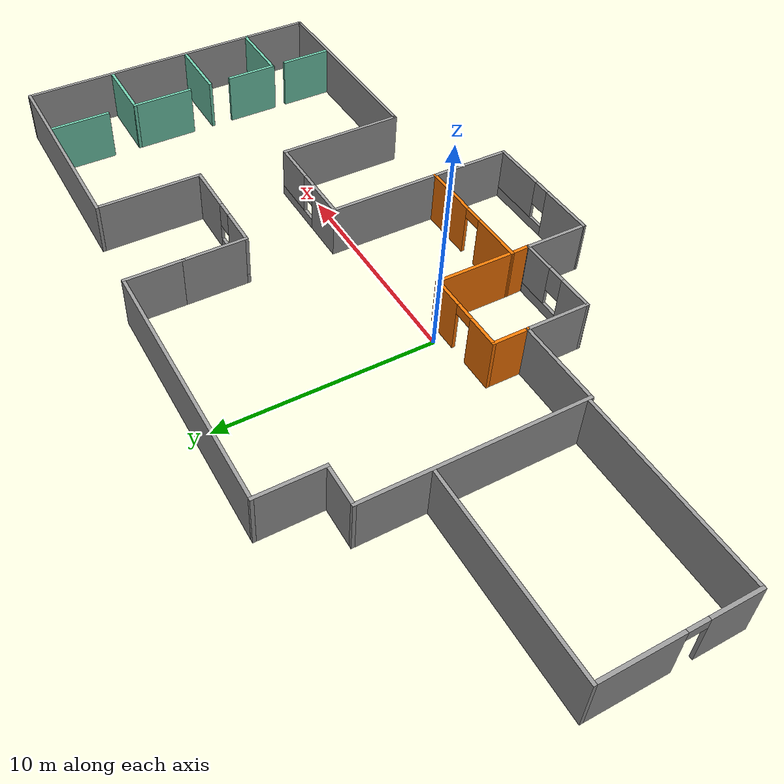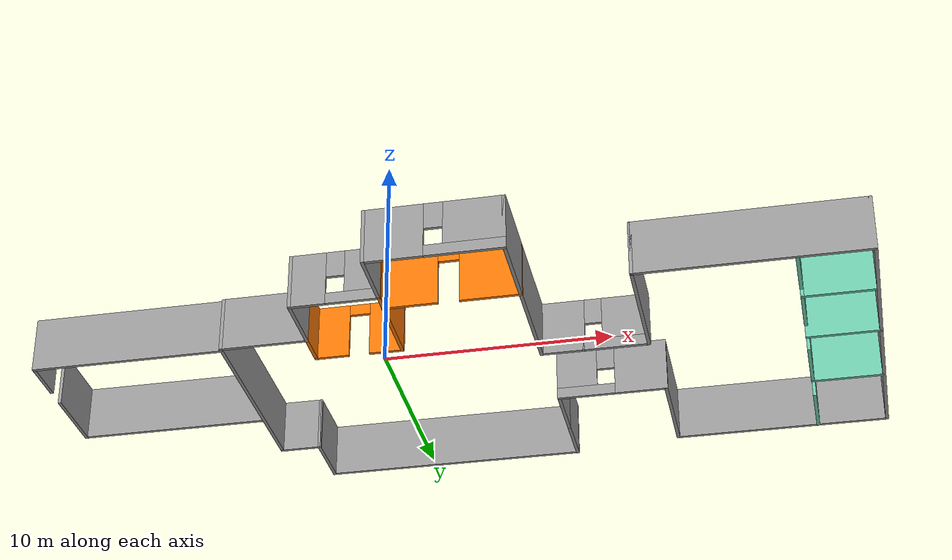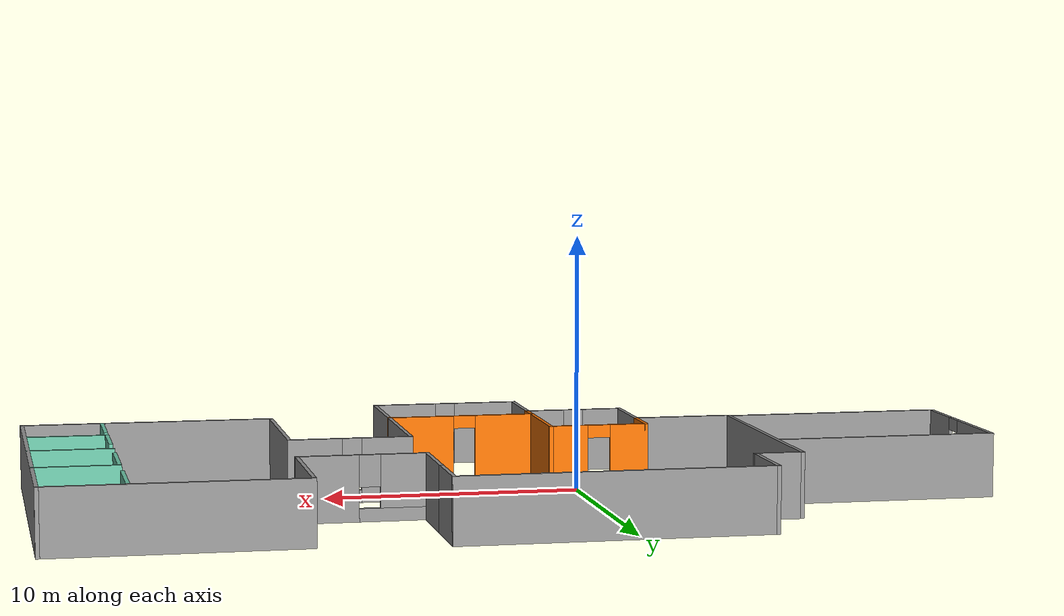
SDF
<?xml version='1.0'?>
<sdf version='1.6'>
  <model name='Project1_building'>
    <pose frame=''>2.94636 1.35233 0 0 -0 0</pose>
    <link name='Wall_35'>
      <collision name='Wall_35_Collision'>
        <geometry>
          <box>
            <size>10.0004 0.15 2.5</size>
          </box>
        </geometry>
        <pose frame=''>0 0 1.25 0 -0 0</pose>
      </collision>
      <visual name='Wall_35_Visual'>
        <pose frame=''>0 0 1.25 0 -0 0</pose>
        <geometry>
          <box>
            <size>10.0004 0.15 2.5</size>
          </box>
        </geometry>
        <material>
          <script>
            <uri>file://media/materials/scripts/gazebo.material</uri>
            <name>Gazebo/Grey</name>
          </script>
          <ambient>1 1 1 1</ambient>
        </material>
        <meta>
          <layer>0</layer>
        </meta>
      </visual>
      <pose frame=''>-9.74538 1.39985 0 0 0 -1.57079</pose>
    </link>
    <link name='Wall_36'>
      <collision name='Wall_36_Collision'>
        <geometry>
          <box>
            <size>4 0.15 2.5</size>
          </box>
        </geometry>
        <pose frame=''>0 0 1.25 0 -0 0</pose>
      </collision>
      <visual name='Wall_36_Visual'>
        <pose frame=''>0 0 1.25 0 -0 0</pose>
        <geometry>
          <box>
            <size>4 0.15 2.5</size>
          </box>
        </geometry>
        <material>
          <script>
            <uri>file://media/materials/scripts/gazebo.material</uri>
            <name>Gazebo/Grey</name>
          </script>
          <ambient>1 1 1 1</ambient>
        </material>
        <meta>
          <layer>0</layer>
        </meta>
      </visual>
      <pose frame=''>-7.82036 -3.52533 0 0 -0 0</pose>
    </link>
    <link name='Wall_37'>
      <collision name='Wall_37_Collision'>
        <geometry>
          <box>
            <size>3 0.15 2.5</size>
          </box>
        </geometry>
        <pose frame=''>0 0 1.25 0 -0 0</pose>
      </collision>
      <visual name='Wall_37_Visual'>
        <pose frame=''>0 0 1.25 0 -0 0</pose>
        <geometry>
          <box>
            <size>3 0.15 2.5</size>
          </box>
        </geometry>
        <material>
          <script>
            <uri>file://media/materials/scripts/gazebo.material</uri>
            <name>Gazebo/Grey</name>
          </script>
          <ambient>1 1 1 1</ambient>
        </material>
        <meta>
          <layer>0</layer>
        </meta>
      </visual>
      <pose frame=''>-5.89538 -4.95015 0 0 0 -1.57081</pose>
    </link>
    <link name='Wall_38'>
      <pose frame=''>-3.97038 -6.37481 0 0 -0 8.5e-05</pose>
      <visual name='Wall_38_Visual_0'>
        <pose frame=''>-1.18388 0 1.25 0 -0 0</pose>
        <geometry>
          <box>
            <size>1.63229 0.15 2.5</size>
          </box>
        </geometry>
        <material>
          <script>
            <uri>file://media/materials/scripts/gazebo.material</uri>
            <name>Gazebo/Grey</name>
          </script>
          <ambient>1 1 1 1</ambient>
        </material>
        <meta>
          <layer>0</layer>
        </meta>
      </visual>
      <collision name='Wall_38_Collision_0'>
        <geometry>
          <box>
            <size>1.63229 0.15 2.5</size>
          </box>
        </geometry>
        <pose frame=''>-1.18388 0 1.25 0 -0 0</pose>
      </collision>
      <visual name='Wall_38_Visual_1'>
        <pose frame=''>0.816147 0 0.25 0 -0 0</pose>
        <geometry>
          <box>
            <size>2.36775 0.15 0.5</size>
          </box>
        </geometry>
        <material>
          <script>
            <uri>file://media/materials/scripts/gazebo.material</uri>
            <name>Gazebo/Grey</name>
          </script>
          <ambient>1 1 1 1</ambient>
        </material>
        <meta>
          <layer>0</layer>
        </meta>
      </visual>
      <collision name='Wall_38_Collision_1'>
        <geometry>
          <box>
            <size>2.36775 0.15 0.5</size>
          </box>
        </geometry>
        <pose frame=''>0.816147 0 0.25 0 -0 0</pose>
      </collision>
      <visual name='Wall_38_Visual_2'>
        <pose frame=''>1.21615 0 1.5 0 -0 0</pose>
        <geometry>
          <box>
            <size>1.56775 0.15 2</size>
          </box>
        </geometry>
        <material>
          <script>
            <uri>file://media/materials/scripts/gazebo.material</uri>
            <name>Gazebo/Grey</name>
          </script>
          <ambient>1 1 1 1</ambient>
        </material>
        <meta>
          <layer>0</layer>
        </meta>
      </visual>
      <collision name='Wall_38_Collision_2'>
        <geometry>
          <box>
            <size>1.56775 0.15 2</size>
          </box>
        </geometry>
        <pose frame=''>1.21615 0 1.5 0 -0 0</pose>
      </collision>
      <visual name='Wall_38_Visual_3'>
        <pose frame=''>0.032272 0 1.9 0 -0 0</pose>
        <geometry>
          <box>
            <size>0.8 0.15 1.2</size>
          </box>
        </geometry>
        <material>
          <script>
            <uri>file://media/materials/scripts/gazebo.material</uri>
            <name>Gazebo/Grey</name>
          </script>
          <ambient>1 1 1 1</ambient>
        </material>
        <meta>
          <layer>0</layer>
        </meta>
      </visual>
      <collision name='Wall_38_Collision_3'>
        <geometry>
          <box>
            <size>0.8 0.15 1.2</size>
          </box>
        </geometry>
        <pose frame=''>0.032272 0 1.9 0 -0 0</pose>
      </collision>
    </link>
    <link name='Wall_39'>
      <collision name='Wall_39_Collision'>
        <geometry>
          <box>
            <size>3.00042 0.15 2.5</size>
          </box>
        </geometry>
        <pose frame=''>0 0 1.25 0 -0 0</pose>
      </collision>
      <visual name='Wall_39_Visual'>
        <pose frame=''>0 0 1.25 0 -0 0</pose>
        <geometry>
          <box>
            <size>3.00042 0.15 2.5</size>
          </box>
        </geometry>
        <material>
          <script>
            <uri>file://media/materials/scripts/gazebo.material</uri>
            <name>Gazebo/Grey</name>
          </script>
          <ambient>1 1 1 1</ambient>
        </material>
        <meta>
          <layer>0</layer>
        </meta>
      </visual>
      <pose frame=''>-2.04538 -7.79981 0 0 0 -1.57081</pose>
    </link>
    <link name='Wall_40'>
      <pose frame=''>0.879597 -9.22498 0 0 -0 0</pose>
      <visual name='Wall_40_Visual_0'>
        <pose frame=''>-1.7008 0 1.25 0 -0 0</pose>
        <geometry>
          <box>
            <size>2.59839 0.15 2.5</size>
          </box>
        </geometry>
        <material>
          <script>
            <uri>file://media/materials/scripts/gazebo.material</uri>
            <name>Gazebo/Grey</name>
          </script>
          <ambient>1 1 1 1</ambient>
        </material>
        <meta>
          <layer>0</layer>
        </meta>
      </visual>
      <collision name='Wall_40_Collision_0'>
        <geometry>
          <box>
            <size>2.59839 0.15 2.5</size>
          </box>
        </geometry>
        <pose frame=''>-1.7008 0 1.25 0 -0 0</pose>
      </collision>
      <visual name='Wall_40_Visual_1'>
        <pose frame=''>1.2992 0 0.25 0 -0 0</pose>
        <geometry>
          <box>
            <size>3.40161 0.15 0.5</size>
          </box>
        </geometry>
        <material>
          <script>
            <uri>file://media/materials/scripts/gazebo.material</uri>
            <name>Gazebo/Grey</name>
          </script>
          <ambient>1 1 1 1</ambient>
        </material>
        <meta>
          <layer>0</layer>
        </meta>
      </visual>
      <collision name='Wall_40_Collision_1'>
        <geometry>
          <box>
            <size>3.40161 0.15 0.5</size>
          </box>
        </geometry>
        <pose frame=''>1.2992 0 0.25 0 -0 0</pose>
      </collision>
      <visual name='Wall_40_Visual_2'>
        <pose frame=''>1.6992 0 1.5 0 -0 0</pose>
        <geometry>
          <box>
            <size>2.60161 0.15 2</size>
          </box>
        </geometry>
        <material>
          <script>
            <uri>file://media/materials/scripts/gazebo.material</uri>
            <name>Gazebo/Grey</name>
          </script>
          <ambient>1 1 1 1</ambient>
        </material>
        <meta>
          <layer>0</layer>
        </meta>
      </visual>
      <collision name='Wall_40_Collision_2'>
        <geometry>
          <box>
            <size>2.60161 0.15 2</size>
          </box>
        </geometry>
        <pose frame=''>1.6992 0 1.5 0 -0 0</pose>
      </collision>
      <visual name='Wall_40_Visual_3'>
        <pose frame=''>-0.001609 0 1.9 0 -0 0</pose>
        <geometry>
          <box>
            <size>0.8 0.15 1.2</size>
          </box>
        </geometry>
        <material>
          <script>
            <uri>file://media/materials/scripts/gazebo.material</uri>
            <name>Gazebo/Grey</name>
          </script>
          <ambient>1 1 1 1</ambient>
        </material>
        <meta>
          <layer>0</layer>
        </meta>
      </visual>
      <collision name='Wall_40_Collision_3'>
        <geometry>
          <box>
            <size>0.8 0.15 1.2</size>
          </box>
        </geometry>
        <pose frame=''>-0.001609 0 1.9 0 -0 0</pose>
      </collision>
    </link>
    <link name='Wall_41'>
      <collision name='Wall_41_Collision'>
        <geometry>
          <box>
            <size>9 0.15 2.5</size>
          </box>
        </geometry>
        <pose frame=''>0 0 1.25 0 -0 0</pose>
      </collision>
      <visual name='Wall_41_Visual'>
        <pose frame=''>0 0 1.25 0 -0 0</pose>
        <geometry>
          <box>
            <size>9 0.15 2.5</size>
          </box>
        </geometry>
        <material>
          <script>
            <uri>file://media/materials/scripts/gazebo.material</uri>
            <name>Gazebo/Grey</name>
          </script>
          <ambient>1 1 1 1</ambient>
        </material>
        <meta>
          <layer>0</layer>
        </meta>
      </visual>
      <pose frame=''>3.8046 -4.79998 0 0 -0 1.5708</pose>
    </link>
    <link name='Wall_42'>
      <collision name='Wall_42_Collision'>
        <geometry>
          <box>
            <size>2 0.15 2.5</size>
          </box>
        </geometry>
        <pose frame=''>0 0 1.25 0 -0 0</pose>
      </collision>
      <visual name='Wall_42_Visual'>
        <pose frame=''>0 0 1.25 0 -0 0</pose>
        <geometry>
          <box>
            <size>2 0.15 2.5</size>
          </box>
        </geometry>
        <material>
          <script>
            <uri>file://media/materials/scripts/gazebo.material</uri>
            <name>Gazebo/Grey</name>
          </script>
          <ambient>1 1 1 1</ambient>
        </material>
        <meta>
          <layer>0</layer>
        </meta>
      </visual>
      <pose frame=''>4.7296 -0.374976 0 0 -0 0</pose>
    </link>
    <link name='Wall_43'>
      <pose frame=''>7.0796 -0.374976 0 0 -0 0</pose>
      <visual name='Wall_43_Visual_0'>
        <pose frame=''>-1.44424 0 1.25 0 -0 0</pose>
        <geometry>
          <box>
            <size>0.111524 0.15 2.5</size>
          </box>
        </geometry>
        <material>
          <script>
            <uri>file://media/materials/scripts/gazebo.material</uri>
            <name>Gazebo/Grey</name>
          </script>
          <ambient>1 1 1 1</ambient>
        </material>
        <meta>
          <layer>0</layer>
        </meta>
      </visual>
      <collision name='Wall_43_Collision_0'>
        <geometry>
          <box>
            <size>0.111524 0.15 2.5</size>
          </box>
        </geometry>
        <pose frame=''>-1.44424 0 1.25 0 -0 0</pose>
      </collision>
      <visual name='Wall_43_Visual_1'>
        <pose frame=''>0.055762 0 0.25 0 -0 0</pose>
        <geometry>
          <box>
            <size>2.88848 0.15 0.5</size>
          </box>
        </geometry>
        <material>
          <script>
            <uri>file://media/materials/scripts/gazebo.material</uri>
            <name>Gazebo/Grey</name>
          </script>
          <ambient>1 1 1 1</ambient>
        </material>
        <meta>
          <layer>0</layer>
        </meta>
      </visual>
      <collision name='Wall_43_Collision_1'>
        <geometry>
          <box>
            <size>2.88848 0.15 0.5</size>
          </box>
        </geometry>
        <pose frame=''>0.055762 0 0.25 0 -0 0</pose>
      </collision>
      <visual name='Wall_43_Visual_2'>
        <pose frame=''>0.455762 0 1.5 0 -0 0</pose>
        <geometry>
          <box>
            <size>2.08848 0.15 2</size>
          </box>
        </geometry>
        <material>
          <script>
            <uri>file://media/materials/scripts/gazebo.material</uri>
            <name>Gazebo/Grey</name>
          </script>
          <ambient>1 1 1 1</ambient>
        </material>
        <meta>
          <layer>0</layer>
        </meta>
      </visual>
      <collision name='Wall_43_Collision_2'>
        <geometry>
          <box>
            <size>2.08848 0.15 2</size>
          </box>
        </geometry>
        <pose frame=''>0.455762 0 1.5 0 -0 0</pose>
      </collision>
      <visual name='Wall_43_Visual_3'>
        <pose frame=''>-0.988476 0 1.9 0 -0 0</pose>
        <geometry>
          <box>
            <size>0.8 0.15 1.2</size>
          </box>
        </geometry>
        <material>
          <script>
            <uri>file://media/materials/scripts/gazebo.material</uri>
            <name>Gazebo/Grey</name>
          </script>
          <ambient>1 1 1 1</ambient>
        </material>
        <meta>
          <layer>0</layer>
        </meta>
      </visual>
      <collision name='Wall_43_Collision_3'>
        <geometry>
          <box>
            <size>0.8 0.15 1.2</size>
          </box>
        </geometry>
        <pose frame=''>-0.988476 0 1.9 0 -0 0</pose>
      </collision>
    </link>
    <link name='Wall_44'>
      <collision name='Wall_44_Collision'>
        <geometry>
          <box>
            <size>6 0.15 2.5</size>
          </box>
        </geometry>
        <pose frame=''>0 0 1.25 0 -0 0</pose>
      </collision>
      <visual name='Wall_44_Visual'>
        <pose frame=''>0 0 1.25 0 -0 0</pose>
        <geometry>
          <box>
            <size>6 0.15 2.5</size>
          </box>
        </geometry>
        <material>
          <script>
            <uri>file://media/materials/scripts/gazebo.material</uri>
            <name>Gazebo/Grey</name>
          </script>
          <ambient>1 1 1 1</ambient>
        </material>
        <meta>
          <layer>0</layer>
        </meta>
      </visual>
      <pose frame=''>8.5046 -3.29998 0 0 0 -1.5708</pose>
    </link>
    <link name='Wall_45'>
      <collision name='Wall_45_Collision'>
        <geometry>
          <box>
            <size>10 0.15 2.5</size>
          </box>
        </geometry>
        <pose frame=''>0 0 1.25 0 -0 0</pose>
      </collision>
      <visual name='Wall_45_Visual'>
        <pose frame=''>0 0 1.25 0 -0 0</pose>
        <geometry>
          <box>
            <size>10 0.15 2.5</size>
          </box>
        </geometry>
        <material>
          <script>
            <uri>file://media/materials/scripts/gazebo.material</uri>
            <name>Gazebo/Grey</name>
          </script>
          <ambient>1 1 1 1</ambient>
        </material>
        <meta>
          <layer>0</layer>
        </meta>
      </visual>
      <pose frame=''>13.4296 -6.22498 0 0 -0 0</pose>
    </link>
    <link name='Wall_46'>
      <collision name='Wall_46_Collision'>
        <geometry>
          <box>
            <size>15 0.15 2.5</size>
          </box>
        </geometry>
        <pose frame=''>0 0 1.25 0 -0 0</pose>
      </collision>
      <visual name='Wall_46_Visual'>
        <pose frame=''>0 0 1.25 0 -0 0</pose>
        <geometry>
          <box>
            <size>15 0.15 2.5</size>
          </box>
        </geometry>
        <material>
          <script>
            <uri>file://media/materials/scripts/gazebo.material</uri>
            <name>Gazebo/Grey</name>
          </script>
          <ambient>1 1 1 1</ambient>
        </material>
        <meta>
          <layer>0</layer>
        </meta>
      </visual>
      <pose frame=''>18.3546 1.20002 0 0 -0 1.5708</pose>
    </link>
    <link name='Wall_47'>
      <collision name='Wall_47_Collision'>
        <geometry>
          <box>
            <size>9.75 0.15 2.5</size>
          </box>
        </geometry>
        <pose frame=''>0 0 1.25 0 -0 0</pose>
      </collision>
      <visual name='Wall_47_Visual'>
        <pose frame=''>0 0 1.25 0 -0 0</pose>
        <geometry>
          <box>
            <size>9.75 0.15 2.5</size>
          </box>
        </geometry>
        <material>
          <script>
            <uri>file://media/materials/scripts/gazebo.material</uri>
            <name>Gazebo/Grey</name>
          </script>
          <ambient>1 1 1 1</ambient>
        </material>
        <meta>
          <layer>0</layer>
        </meta>
      </visual>
      <pose frame=''>13.5546 8.62502 0 0 -0 3.14159</pose>
    </link>
    <link name='Wall_48'>
      <collision name='Wall_48_Collision'>
        <geometry>
          <box>
            <size>5 0.15 2.5</size>
          </box>
        </geometry>
        <pose frame=''>0 0 1.25 0 -0 0</pose>
      </collision>
      <visual name='Wall_48_Visual'>
        <pose frame=''>0 0 1.25 0 -0 0</pose>
        <geometry>
          <box>
            <size>5 0.15 2.5</size>
          </box>
        </geometry>
        <material>
          <script>
            <uri>file://media/materials/scripts/gazebo.material</uri>
            <name>Gazebo/Grey</name>
          </script>
          <ambient>1 1 1 1</ambient>
        </material>
        <meta>
          <layer>0</layer>
        </meta>
      </visual>
      <pose frame=''>8.7546 6.20003 0 0 0 -1.5708</pose>
    </link>
    <link name='Wall_49'>
      <pose frame=''>6.3296 3.77502 0 0 -0 3.14159</pose>
      <visual name='Wall_49_Visual_0'>
        <pose frame=''>-1.31529 0 1.25 0 -0 0</pose>
        <geometry>
          <box>
            <size>2.36941 0.15 2.5</size>
          </box>
        </geometry>
        <material>
          <script>
            <uri>file://media/materials/scripts/gazebo.material</uri>
            <name>Gazebo/Grey</name>
          </script>
          <ambient>1 1 1 1</ambient>
        </material>
        <meta>
          <layer>0</layer>
        </meta>
      </visual>
      <collision name='Wall_49_Collision_0'>
        <geometry>
          <box>
            <size>2.36941 0.15 2.5</size>
          </box>
        </geometry>
        <pose frame=''>-1.31529 0 1.25 0 -0 0</pose>
      </collision>
      <visual name='Wall_49_Visual_1'>
        <pose frame=''>1.18471 0 0.25 0 -0 0</pose>
        <geometry>
          <box>
            <size>2.63059 0.15 0.5</size>
          </box>
        </geometry>
        <material>
          <script>
            <uri>file://media/materials/scripts/gazebo.material</uri>
            <name>Gazebo/Grey</name>
          </script>
          <ambient>1 1 1 1</ambient>
        </material>
        <meta>
          <layer>0</layer>
        </meta>
      </visual>
      <collision name='Wall_49_Collision_1'>
        <geometry>
          <box>
            <size>2.63059 0.15 0.5</size>
          </box>
        </geometry>
        <pose frame=''>1.18471 0 0.25 0 -0 0</pose>
      </collision>
      <visual name='Wall_49_Visual_2'>
        <pose frame=''>1.58471 0 1.5 0 -0 0</pose>
        <geometry>
          <box>
            <size>1.83059 0.15 2</size>
          </box>
        </geometry>
        <material>
          <script>
            <uri>file://media/materials/scripts/gazebo.material</uri>
            <name>Gazebo/Grey</name>
          </script>
          <ambient>1 1 1 1</ambient>
        </material>
        <meta>
          <layer>0</layer>
        </meta>
      </visual>
      <collision name='Wall_49_Collision_2'>
        <geometry>
          <box>
            <size>1.83059 0.15 2</size>
          </box>
        </geometry>
        <pose frame=''>1.58471 0 1.5 0 -0 0</pose>
      </collision>
      <visual name='Wall_49_Visual_3'>
        <pose frame=''>0.269414 0 1.9 0 -0 0</pose>
        <geometry>
          <box>
            <size>0.8 0.15 1.2</size>
          </box>
        </geometry>
        <material>
          <script>
            <uri>file://media/materials/scripts/gazebo.material</uri>
            <name>Gazebo/Grey</name>
          </script>
          <ambient>1 1 1 1</ambient>
        </material>
        <meta>
          <layer>0</layer>
        </meta>
      </visual>
      <collision name='Wall_49_Collision_3'>
        <geometry>
          <box>
            <size>0.8 0.15 1.2</size>
          </box>
        </geometry>
        <pose frame=''>0.269414 0 1.9 0 -0 0</pose>
      </collision>
    </link>
    <link name='Wall_50'>
      <collision name='Wall_50_Collision'>
        <geometry>
          <box>
            <size>3 0.15 2.5</size>
          </box>
        </geometry>
        <pose frame=''>0 0 1.25 0 -0 0</pose>
      </collision>
      <visual name='Wall_50_Visual'>
        <pose frame=''>0 0 1.25 0 -0 0</pose>
        <geometry>
          <box>
            <size>3 0.15 2.5</size>
          </box>
        </geometry>
        <material>
          <script>
            <uri>file://media/materials/scripts/gazebo.material</uri>
            <name>Gazebo/Grey</name>
          </script>
          <ambient>1 1 1 1</ambient>
        </material>
        <meta>
          <layer>0</layer>
        </meta>
      </visual>
      <pose frame=''>3.9046 5.20003 0 0 -0 1.5708</pose>
    </link>
    <link name='Wall_51'>
      <collision name='Wall_51_Collision'>
        <geometry>
          <box>
            <size>2.75 0.15 2.5</size>
          </box>
        </geometry>
        <pose frame=''>0 0 1.25 0 -0 0</pose>
      </collision>
      <visual name='Wall_51_Visual'>
        <pose frame=''>0 0 1.25 0 -0 0</pose>
        <geometry>
          <box>
            <size>2.75 0.15 2.5</size>
          </box>
        </geometry>
        <material>
          <script>
            <uri>file://media/materials/scripts/gazebo.material</uri>
            <name>Gazebo/Grey</name>
          </script>
          <ambient>1 1 1 1</ambient>
        </material>
        <meta>
          <layer>0</layer>
        </meta>
      </visual>
      <pose frame=''>3.9046 7.92502 0 0 -0 1.5708</pose>
    </link>
    <link name='Wall_52'>
      <collision name='Wall_52_Collision'>
        <geometry>
          <box>
            <size>12 0.15 2.5</size>
          </box>
        </geometry>
        <pose frame=''>0 0 1.25 0 -0 0</pose>
      </collision>
      <visual name='Wall_52_Visual'>
        <pose frame=''>0 0 1.25 0 -0 0</pose>
        <geometry>
          <box>
            <size>12 0.15 2.5</size>
          </box>
        </geometry>
        <material>
          <script>
            <uri>file://media/materials/scripts/gazebo.material</uri>
            <name>Gazebo/Grey</name>
          </script>
          <ambient>1 1 1 1</ambient>
        </material>
        <meta>
          <layer>0</layer>
        </meta>
      </visual>
      <pose frame=''>-2.02038 9.22485 0 0 0 -3.14156</pose>
    </link>
    <link name='Wall_53'>
      <collision name='Wall_53_Collision'>
        <geometry>
          <box>
            <size>3.05 0.15 2.5</size>
          </box>
        </geometry>
        <pose frame=''>0 0 1.25 0 -0 0</pose>
      </collision>
      <visual name='Wall_53_Visual'>
        <pose frame=''>0 0 1.25 0 -0 0</pose>
        <geometry>
          <box>
            <size>3.05 0.15 2.5</size>
          </box>
        </geometry>
        <material>
          <script>
            <uri>file://media/materials/scripts/gazebo.material</uri>
            <name>Gazebo/Grey</name>
          </script>
          <ambient>1 1 1 1</ambient>
        </material>
        <meta>
          <layer>0</layer>
        </meta>
      </visual>
      <pose frame=''>-7.94536 7.77467 0 0 0 -1.5708</pose>
    </link>
    <link name='Wall_54'>
      <collision name='Wall_54_Collision'>
        <geometry>
          <box>
            <size>1.95069 0.15 2.5</size>
          </box>
        </geometry>
        <pose frame=''>0 0 1.25 0 -0 0</pose>
      </collision>
      <visual name='Wall_54_Visual'>
        <pose frame=''>0 0 1.25 0 -0 0</pose>
        <geometry>
          <box>
            <size>1.95069 0.15 2.5</size>
          </box>
        </geometry>
        <material>
          <script>
            <uri>file://media/materials/scripts/gazebo.material</uri>
            <name>Gazebo/Grey</name>
          </script>
          <ambient>1 1 1 1</ambient>
        </material>
        <meta>
          <layer>0</layer>
        </meta>
      </visual>
      <pose frame=''>-8.84538 6.32485 0 0 -0 3.1414</pose>
    </link>
    <link name='Wall_56'>
      <collision name='Wall_56_Collision'>
        <geometry>
          <box>
            <size>1 0.15 2.5</size>
          </box>
        </geometry>
        <pose frame=''>0 0 1.25 0 -0 0</pose>
      </collision>
      <visual name='Wall_56_Visual'>
        <pose frame=''>0 0 1.25 0 -0 0</pose>
        <geometry>
          <box>
            <size>1 0.15 2.5</size>
          </box>
        </geometry>
        <material>
          <script>
            <uri>file://media/materials/scripts/gazebo.material</uri>
            <name>Gazebo/Grey</name>
          </script>
          <ambient>0.996078 0.47451 0.0196078 1</ambient>
        </material>
        <meta>
          <layer>0</layer>
        </meta>
      </visual>
      <pose frame=''>-2.03353 -5.94949 0 0 -0 1.59861</pose>
    </link>
    <link name='Wall_57'>
      <pose frame=''>0.879641 -5.52483 0 0 0 -0.000171</pose>
      <visual name='Wall_57_Visual_0'>
        <pose frame=''>-1.78854 0 1.25 0 -0 0</pose>
        <geometry>
          <box>
            <size>2.42292 0.15 2.5</size>
          </box>
        </geometry>
        <material>
          <script>
            <uri>file://media/materials/scripts/gazebo.material</uri>
            <name>Gazebo/Grey</name>
          </script>
          <ambient>0.996078 0.47451 0.0196078 1</ambient>
        </material>
        <meta>
          <layer>0</layer>
        </meta>
      </visual>
      <collision name='Wall_57_Collision_0'>
        <geometry>
          <box>
            <size>2.42292 0.15 2.5</size>
          </box>
        </geometry>
        <pose frame=''>-1.78854 0 1.25 0 -0 0</pose>
      </collision>
      <visual name='Wall_57_Visual_1'>
        <pose frame=''>1.66146 0 1.25 0 -0 0</pose>
        <geometry>
          <box>
            <size>2.67708 0.15 2.5</size>
          </box>
        </geometry>
        <material>
          <script>
            <uri>file://media/materials/scripts/gazebo.material</uri>
            <name>Gazebo/Grey</name>
          </script>
          <ambient>0.996078 0.47451 0.0196078 1</ambient>
        </material>
        <meta>
          <layer>0</layer>
        </meta>
      </visual>
      <collision name='Wall_57_Collision_1'>
        <geometry>
          <box>
            <size>2.67708 0.15 2.5</size>
          </box>
        </geometry>
        <pose frame=''>1.66146 0 1.25 0 -0 0</pose>
      </collision>
      <visual name='Wall_57_Visual_2'>
        <pose frame=''>-0.127078 0 2.25 0 -0 0</pose>
        <geometry>
          <box>
            <size>0.9 0.15 0.5</size>
          </box>
        </geometry>
        <material>
          <script>
            <uri>file://media/materials/scripts/gazebo.material</uri>
            <name>Gazebo/Grey</name>
          </script>
          <ambient>0.996078 0.47451 0.0196078 1</ambient>
        </material>
        <meta>
          <layer>0</layer>
        </meta>
      </visual>
      <collision name='Wall_57_Collision_2'>
        <geometry>
          <box>
            <size>0.9 0.15 0.5</size>
          </box>
        </geometry>
        <pose frame=''>-0.127078 0 2.25 0 -0 0</pose>
      </collision>
    </link>
    <link name='Wall_59'>
      <collision name='Wall_59_Collision'>
        <geometry>
          <box>
            <size>1.75 0.15 2.5</size>
          </box>
        </geometry>
        <pose frame=''>0 0 1.25 0 -0 0</pose>
      </collision>
      <visual name='Wall_59_Visual'>
        <pose frame=''>0 0 1.25 0 -0 0</pose>
        <geometry>
          <box>
            <size>1.75 0.15 2.5</size>
          </box>
        </geometry>
        <material>
          <script>
            <uri>file://media/materials/scripts/gazebo.material</uri>
            <name>Gazebo/Grey</name>
          </script>
          <ambient>0.996078 0.47451 0.0196078 1</ambient>
        </material>
        <meta>
          <layer>0</layer>
        </meta>
      </visual>
      <pose frame=''>-5.89536 -2.72533 0 0 -0 1.5708</pose>
    </link>
    <link name='Wall_62'>
      <collision name='Wall_62_Collision'>
        <geometry>
          <box>
            <size>3.74975 0.15 2.5</size>
          </box>
        </geometry>
        <pose frame=''>0 0 1.25 0 -0 0</pose>
      </collision>
      <visual name='Wall_62_Visual'>
        <pose frame=''>0 0 1.25 0 -0 0</pose>
        <geometry>
          <box>
            <size>3.74975 0.15 2.5</size>
          </box>
        </geometry>
        <material>
          <script>
            <uri>file://media/materials/scripts/gazebo.material</uri>
            <name>Gazebo/Grey</name>
          </script>
          <ambient>0.996078 0.47451 0.0196078 1</ambient>
        </material>
        <meta>
          <layer>0</layer>
        </meta>
      </visual>
      <pose frame=''>-2.04536 -3.72483 0 0 -0 1.5708</pose>
    </link>
    <link name='Wall_63'>
      <pose frame=''>-3.97036 -1.92533 0 0 -0 3.14159</pose>
      <visual name='Wall_63_Visual_0'>
        <pose frame=''>-1.22397 0 1.25 0 -0 0</pose>
        <geometry>
          <box>
            <size>1.55205 0.15 2.5</size>
          </box>
        </geometry>
        <material>
          <script>
            <uri>file://media/materials/scripts/gazebo.material</uri>
            <name>Gazebo/Grey</name>
          </script>
          <ambient>0.996078 0.47451 0.0196078 1</ambient>
        </material>
        <meta>
          <layer>0</layer>
        </meta>
      </visual>
      <collision name='Wall_63_Collision_0'>
        <geometry>
          <box>
            <size>1.55205 0.15 2.5</size>
          </box>
        </geometry>
        <pose frame=''>-1.22397 0 1.25 0 -0 0</pose>
      </collision>
      <visual name='Wall_63_Visual_1'>
        <pose frame=''>1.22603 0 1.25 0 -0 0</pose>
        <geometry>
          <box>
            <size>1.54795 0.15 2.5</size>
          </box>
        </geometry>
        <material>
          <script>
            <uri>file://media/materials/scripts/gazebo.material</uri>
            <name>Gazebo/Grey</name>
          </script>
          <ambient>0.996078 0.47451 0.0196078 1</ambient>
        </material>
        <meta>
          <layer>0</layer>
        </meta>
      </visual>
      <collision name='Wall_63_Collision_1'>
        <geometry>
          <box>
            <size>1.54795 0.15 2.5</size>
          </box>
        </geometry>
        <pose frame=''>1.22603 0 1.25 0 -0 0</pose>
      </collision>
      <visual name='Wall_63_Visual_2'>
        <pose frame=''>0.002054 0 2.25 0 -0 0</pose>
        <geometry>
          <box>
            <size>0.9 0.15 0.5</size>
          </box>
        </geometry>
        <material>
          <script>
            <uri>file://media/materials/scripts/gazebo.material</uri>
            <name>Gazebo/Grey</name>
          </script>
          <ambient>0.996078 0.47451 0.0196078 1</ambient>
        </material>
        <meta>
          <layer>0</layer>
        </meta>
      </visual>
      <collision name='Wall_63_Collision_2'>
        <geometry>
          <box>
            <size>0.9 0.15 0.5</size>
          </box>
        </geometry>
        <pose frame=''>0.002054 0 2.25 0 -0 0</pose>
      </collision>
    </link>
    <link name='Wall_65'>
      <collision name='Wall_65_Collision'>
        <geometry>
          <box>
            <size>8.61907 0.15 2.5</size>
          </box>
        </geometry>
        <pose frame=''>0 0 1.25 0 -0 0</pose>
      </collision>
      <visual name='Wall_65_Visual'>
        <pose frame=''>0 0 1.25 0 -0 0</pose>
        <geometry>
          <box>
            <size>8.61907 0.15 2.5</size>
          </box>
        </geometry>
        <material>
          <script>
            <uri>file://media/materials/scripts/gazebo.material</uri>
            <name>Gazebo/Grey</name>
          </script>
          <ambient>1 1 1 1</ambient>
        </material>
        <meta>
          <layer>0</layer>
        </meta>
      </visual>
      <pose frame=''>-14.1201 3.22011 0 0 -0 3.14159</pose>
    </link>
    <link name='Wall_73'>
      <pose frame=''>-18.3546 -0.079888 0 0 0 -1.5708</pose>
      <visual name='Wall_73_Visual_0'>
        <pose frame=''>-1.57968 0 1.25 0 -0 0</pose>
        <geometry>
          <box>
            <size>3.59064 0.15 2.5</size>
          </box>
        </geometry>
        <material>
          <script>
            <uri>file://media/materials/scripts/gazebo.material</uri>
            <name>Gazebo/Grey</name>
          </script>
          <ambient>1 1 1 1</ambient>
        </material>
        <meta>
          <layer>0</layer>
        </meta>
      </visual>
      <collision name='Wall_73_Collision_0'>
        <geometry>
          <box>
            <size>3.59064 0.15 2.5</size>
          </box>
        </geometry>
        <pose frame=''>-1.57968 0 1.25 0 -0 0</pose>
      </collision>
      <visual name='Wall_73_Visual_1'>
        <pose frame=''>2.24532 0 1.25 0 -0 0</pose>
        <geometry>
          <box>
            <size>2.25936 0.15 2.5</size>
          </box>
        </geometry>
        <material>
          <script>
            <uri>file://media/materials/scripts/gazebo.material</uri>
            <name>Gazebo/Grey</name>
          </script>
          <ambient>1 1 1 1</ambient>
        </material>
        <meta>
          <layer>0</layer>
        </meta>
      </visual>
      <collision name='Wall_73_Collision_1'>
        <geometry>
          <box>
            <size>2.25936 0.15 2.5</size>
          </box>
        </geometry>
        <pose frame=''>2.24532 0 1.25 0 -0 0</pose>
      </collision>
      <visual name='Wall_73_Visual_2'>
        <pose frame=''>0.665644 0 2.25 0 -0 0</pose>
        <geometry>
          <box>
            <size>0.9 0.15 0.5</size>
          </box>
        </geometry>
        <material>
          <script>
            <uri>file://media/materials/scripts/gazebo.material</uri>
            <name>Gazebo/Grey</name>
          </script>
          <ambient>1 1 1 1</ambient>
        </material>
        <meta>
          <layer>0</layer>
        </meta>
      </visual>
      <collision name='Wall_73_Collision_2'>
        <geometry>
          <box>
            <size>0.9 0.15 0.5</size>
          </box>
        </geometry>
        <pose frame=''>0.665644 0 2.25 0 -0 0</pose>
      </collision>
    </link>
    <link name='Wall_74'>
      <collision name='Wall_74_Collision'>
        <geometry>
          <box>
            <size>8.75 0.15 2.5</size>
          </box>
        </geometry>
        <pose frame=''>0 0 1.25 0 -0 0</pose>
      </collision>
      <visual name='Wall_74_Visual'>
        <pose frame=''>0 0 1.25 0 -0 0</pose>
        <geometry>
          <box>
            <size>8.75 0.15 2.5</size>
          </box>
        </geometry>
        <material>
          <script>
            <uri>file://media/materials/scripts/gazebo.material</uri>
            <name>Gazebo/Grey</name>
          </script>
          <ambient>1 1 1 1</ambient>
        </material>
        <meta>
          <layer>0</layer>
        </meta>
      </visual>
      <pose frame=''>-14.0546 -3.37989 0 0 -0 0</pose>
    </link>
    <link name='Wall_76'>
      <collision name='Wall_76_Collision'>
        <geometry>
          <box>
            <size>3 0.15 2.5</size>
          </box>
        </geometry>
        <pose frame=''>0 0 1.25 0 -0 0</pose>
      </collision>
      <visual name='Wall_76_Visual'>
        <pose frame=''>0 0 1.25 0 -0 0</pose>
        <geometry>
          <box>
            <size>3 0.15 2.5</size>
          </box>
        </geometry>
        <material>
          <script>
            <uri>file://media/materials/scripts/gazebo.material</uri>
            <name>Gazebo/Grey</name>
          </script>
          <ambient>0.435294 0.796078 0.67451 1</ambient>
        </material>
        <meta>
          <layer>0</layer>
        </meta>
      </visual>
      <pose frame=''>15.2266 7.19767 0 0 0 -1.5708</pose>
    </link>
    <link name='Wall_81'>
      <collision name='Wall_81_Collision'>
        <geometry>
          <box>
            <size>3 0.15 2.5</size>
          </box>
        </geometry>
        <pose frame=''>0 0 1.25 0 -0 0</pose>
      </collision>
      <visual name='Wall_81_Visual'>
        <pose frame=''>0 0 1.25 0 -0 0</pose>
        <geometry>
          <box>
            <size>3 0.15 2.5</size>
          </box>
        </geometry>
        <material>
          <script>
            <uri>file://media/materials/scripts/gazebo.material</uri>
            <name>Gazebo/Grey</name>
          </script>
          <ambient>0.435294 0.796078 0.67451 1</ambient>
        </material>
        <meta>
          <layer>0</layer>
        </meta>
      </visual>
      <pose frame=''>15.2266 2.95067 0 0 0 -1.5708</pose>
    </link>
    <link name='Wall_87'>
      <collision name='Wall_87_Collision'>
        <geometry>
          <box>
            <size>3.25 0.15 2.5</size>
          </box>
        </geometry>
        <pose frame=''>0 0 1.25 0 -0 0</pose>
      </collision>
      <visual name='Wall_87_Visual'>
        <pose frame=''>0 0 1.25 0 -0 0</pose>
        <geometry>
          <box>
            <size>3.25 0.15 2.5</size>
          </box>
        </geometry>
        <material>
          <script>
            <uri>file://media/materials/scripts/gazebo.material</uri>
            <name>Gazebo/Grey</name>
          </script>
          <ambient>0.435294 0.796078 0.67451 1</ambient>
        </material>
        <meta>
          <layer>0</layer>
        </meta>
      </visual>
      <pose frame=''>16.7766 4.37567 0 0 -0 0</pose>
    </link>
    <link name='Wall_89'>
      <collision name='Wall_89_Collision'>
        <geometry>
          <box>
            <size>3.26808 0.15 2.5</size>
          </box>
        </geometry>
        <pose frame=''>0 0 1.25 0 -0 0</pose>
      </collision>
      <visual name='Wall_89_Visual'>
        <pose frame=''>0 0 1.25 0 -0 0</pose>
        <geometry>
          <box>
            <size>3.26808 0.15 2.5</size>
          </box>
        </geometry>
        <material>
          <script>
            <uri>file://media/materials/scripts/gazebo.material</uri>
            <name>Gazebo/Grey</name>
          </script>
          <ambient>0.435294 0.796078 0.67451 1</ambient>
        </material>
        <meta>
          <layer>0</layer>
        </meta>
      </visual>
      <pose frame=''>16.7856 0.405672 0 0 -0 0</pose>
    </link>
    <link name='Wall_94'>
      <collision name='Wall_94_Collision'>
        <geometry>
          <box>
            <size>3.25 0.15 2.5</size>
          </box>
        </geometry>
        <pose frame=''>0 0 1.25 0 -0 0</pose>
      </collision>
      <visual name='Wall_94_Visual'>
        <pose frame=''>0 0 1.25 0 -0 0</pose>
        <geometry>
          <box>
            <size>3.25 0.15 2.5</size>
          </box>
        </geometry>
        <material>
          <script>
            <uri>file://media/materials/scripts/gazebo.material</uri>
            <name>Gazebo/Grey</name>
          </script>
          <ambient>0.435294 0.796078 0.67451 1</ambient>
        </material>
        <meta>
          <layer>0</layer>
        </meta>
      </visual>
      <pose frame=''>16.7766 -3.04433 0 0 -0 0</pose>
    </link>
    <link name='Wall_96'>
      <collision name='Wall_96_Collision'>
        <geometry>
          <box>
            <size>2.5 0.15 2.5</size>
          </box>
        </geometry>
        <pose frame=''>0 0 1.25 0 -0 0</pose>
      </collision>
      <visual name='Wall_96_Visual'>
        <pose frame=''>0 0 1.25 0 -0 0</pose>
        <geometry>
          <box>
            <size>2.5 0.15 2.5</size>
          </box>
        </geometry>
        <material>
          <script>
            <uri>file://media/materials/scripts/gazebo.material</uri>
            <name>Gazebo/Grey</name>
          </script>
          <ambient>0.435294 0.796078 0.67451 1</ambient>
        </material>
        <meta>
          <layer>0</layer>
        </meta>
      </visual>
      <pose frame=''>15.2266 -1.87233 0 0 0 -1.5708</pose>
    </link>
    <link name='Wall_98'>
      <collision name='Wall_98_Collision'>
        <geometry>
          <box>
            <size>2.5 0.15 2.5</size>
          </box>
        </geometry>
        <pose frame=''>0 0 1.25 0 -0 0</pose>
      </collision>
      <visual name='Wall_98_Visual'>
        <pose frame=''>0 0 1.25 0 -0 0</pose>
        <geometry>
          <box>
            <size>2.5 0.15 2.5</size>
          </box>
        </geometry>
        <material>
          <script>
            <uri>file://media/materials/scripts/gazebo.material</uri>
            <name>Gazebo/Grey</name>
          </script>
          <ambient>0.435294 0.796078 0.67451 1</ambient>
        </material>
        <meta>
          <layer>0</layer>
        </meta>
      </visual>
      <pose frame=''>15.2266 -4.93933 0 0 0 -1.5708</pose>
    </link>
    <static>1</static>
  </model>
</sdf>
